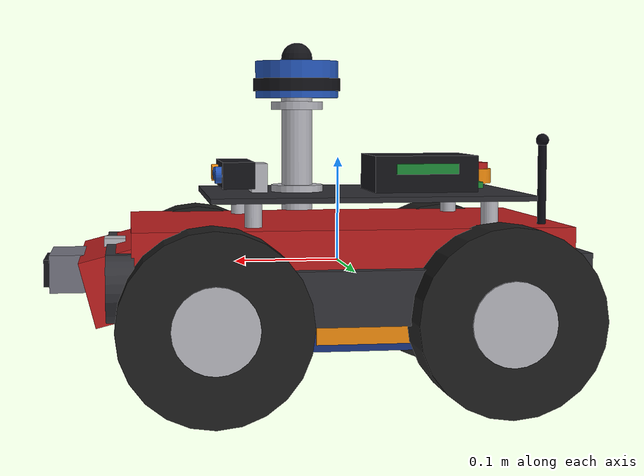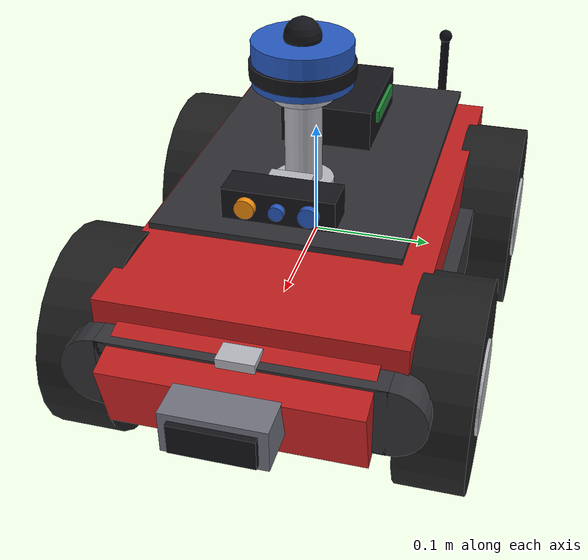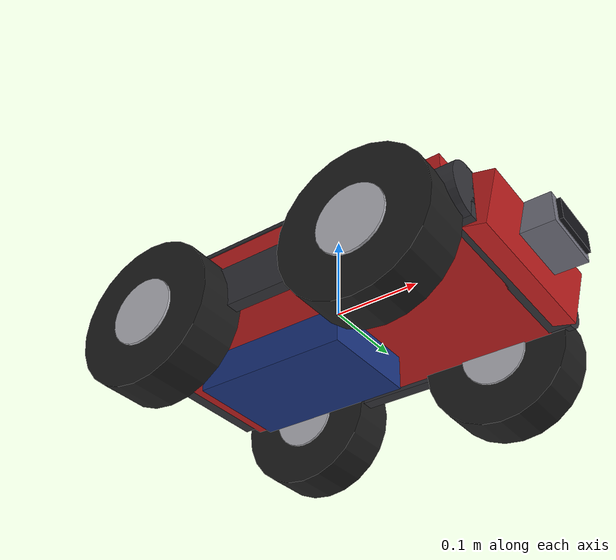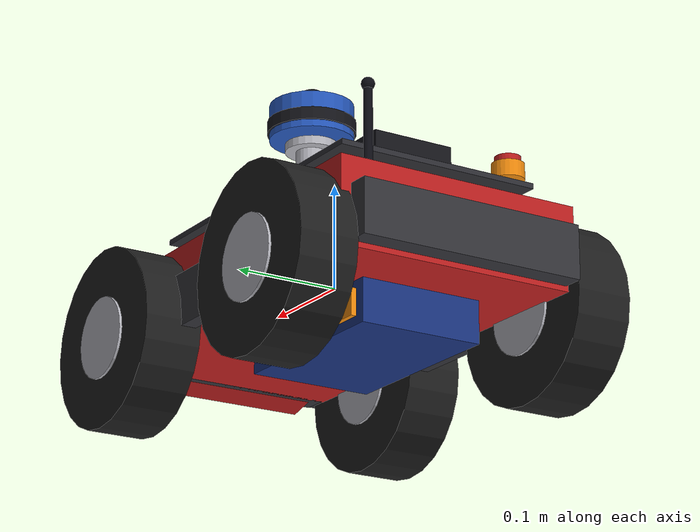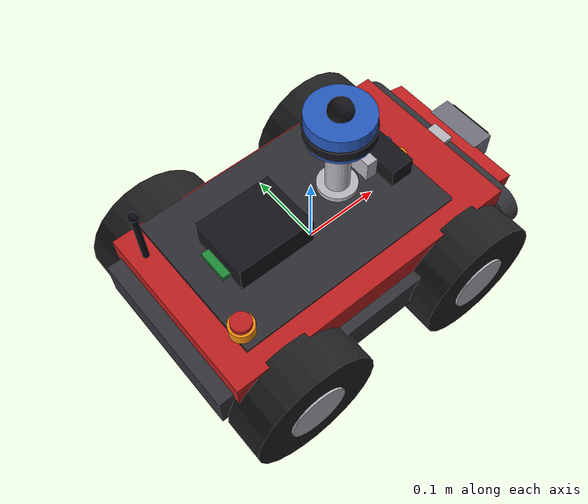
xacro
<?xml version="1.0"?>
<robot name="autonomous_mobile_robot" xmlns:xacro="http://ros.org/wiki/xacro">

  <!-- XACRO PROPERTIES (tune geometry in one place)                     -->
  <xacro:property name="chassis_length"  value="0.40"/>
  <xacro:property name="chassis_width"   value="0.24"/>
  <xacro:property name="chassis_height"  value="0.08"/>
  <xacro:property name="chassis_mass"    value="2.0"/>

  <xacro:property name="upper_deck_length" value="0.30"/>
  <xacro:property name="upper_deck_width"  value="0.20"/>
  <xacro:property name="upper_deck_height" value="0.005"/>
  <xacro:property name="upper_deck_mass"   value="0.3"/>

  <xacro:property name="wheel_radius"    value="0.085"/>
  <xacro:property name="wheel_width"     value="0.055"/>
  <xacro:property name="wheel_mass"      value="0.30"/>
  <xacro:property name="wheel_sep"       value="0.28"/>   <!-- center-to-center Y — tighter for agility -->
  <xacro:property name="wheelbase"       value="0.26"/>   <!-- front-to-rear X — tighter turning radius -->

  <!-- XACRO MACROS                                                      -->

  <!-- Box inertia macro -->
  <xacro:macro name="box_inertia" params="m x y z">
    <inertial>
      <mass value="${m}"/>
      <inertia ixx="${m/12.0*(y*y+z*z)}" ixy="0" ixz="0"
               iyy="${m/12.0*(x*x+z*z)}" iyz="0"
               izz="${m/12.0*(x*x+y*y)}"/>
    </inertial>
  </xacro:macro>

  <!-- Cylinder inertia macro (oriented along Z before joint rotation) -->
  <xacro:macro name="cylinder_inertia" params="m r h">
    <inertial>
      <mass value="${m}"/>
      <inertia ixx="${m/12.0*(3*r*r+h*h)}" ixy="0" ixz="0"
               iyy="${m/12.0*(3*r*r+h*h)}" iyz="0"
               izz="${0.5*m*r*r}"/>
    </inertial>
  </xacro:macro>

  <!-- Wheel macro (creates link + joint + Gazebo friction) -->
  <xacro:macro name="mecanum_wheel" params="name x_pos y_pos fdir1_y">
    <link name="${name}">
      <!-- Tire -->
      <visual>
        <geometry><cylinder radius="${wheel_radius}" length="${wheel_width}"/></geometry>
        <origin xyz="0 0 0" rpy="${pi/2} 0 0"/>
        <material name="dark_rubber"/>
      </visual>
      <!-- Hub cap -->
      <visual>
        <geometry><cylinder radius="${wheel_radius*0.45}" length="${wheel_width+0.005}"/></geometry>
        <origin xyz="0 0 0" rpy="${pi/2} 0 0"/>
        <material name="silver"/>
      </visual>
      <collision>
        <geometry><cylinder radius="${wheel_radius}" length="${wheel_width}"/></geometry>
        <origin xyz="0 0 0" rpy="${pi/2} 0 0"/>
      </collision>
      <xacro:cylinder_inertia m="${wheel_mass}" r="${wheel_radius}" h="${wheel_width}"/>
    </link>

    <joint name="${name}_joint" type="continuous">
      <parent link="base_link"/>
      <child link="${name}"/>
      <origin xyz="${x_pos} ${y_pos} -0.04" rpy="0 0 0"/>
      <axis xyz="0 1 0"/>
      <limit effort="25.0" velocity="15.0"/>
      <dynamics damping="0.03" friction="0.005"/>
    </joint>

    <!-- Mecanum anisotropic friction -->
    <gazebo reference="${name}">
      <surface>
        <friction>
          <ode>
            <mu>1.2</mu>
            <mu2>0.1</mu2>
            <fdir1>1 ${fdir1_y} 0</fdir1>
          </ode>
        </friction>
        <contact>
          <ode>
            <soft_cfm>0</soft_cfm>
            <soft_erp>0.2</soft_erp>
            <kp>1000000</kp>
            <kd>100</kd>
            <max_vel>0.1</max_vel>
            <min_depth>0.002</min_depth>
          </ode>
        </contact>
      </surface>
    </gazebo>
  </xacro:macro>

  <!-- MATERIALS                                                         -->
  <material name="chassis_red">
    <color rgba="0.75 0.12 0.12 1"/>
  </material>
  <material name="deck_dark">
    <color rgba="0.18 0.18 0.20 1"/>
  </material>
  <material name="dark_rubber">
    <color rgba="0.12 0.12 0.12 1"/>
  </material>
  <material name="silver">
    <color rgba="0.72 0.72 0.75 1"/>
  </material>
  <material name="sensor_blue">
    <color rgba="0.15 0.35 0.75 1"/>
  </material>
  <material name="sensor_black">
    <color rgba="0.08 0.08 0.10 1"/>
  </material>
  <material name="pcb_green">
    <color rgba="0.12 0.55 0.22 1"/>
  </material>
  <material name="radar_gray">
    <color rgba="0.45 0.45 0.50 1"/>
  </material>
  <material name="bumper_dark">
    <color rgba="0.20 0.20 0.22 1"/>
  </material>
  <material name="battery_blue">
    <color rgba="0.10 0.20 0.50 1"/>
  </material>
  <material name="antenna_black">
    <color rgba="0.05 0.05 0.08 1"/>
  </material>
  <material name="orange_accent">
    <color rgba="0.95 0.55 0.05 1"/>
  </material>

  <!-- BASE LINK (Main chassis body)                                     -->
  <link name="base_link">
    <!-- Main chassis body -->
    <visual>
      <geometry><box size="${chassis_length} ${chassis_width} ${chassis_height}"/></geometry>
      <origin xyz="0 0 0" rpy="0 0 0"/>
      <material name="chassis_red"/>
    </visual>
    <!-- Chamfered front nose (angled wedge effect using a smaller box) -->
    <visual>
      <geometry><box size="0.06 0.20 0.06"/></geometry>
      <origin xyz="0.21 0 -0.01" rpy="0 0.25 0"/>
      <material name="chassis_red"/>
    </visual>
    <!-- Side skirt left -->
    <visual>
      <geometry><box size="0.36 0.015 0.05"/></geometry>
      <origin xyz="0 0.125 -0.02" rpy="0 0 0"/>
      <material name="bumper_dark"/>
    </visual>
    <!-- Side skirt right -->
    <visual>
      <geometry><box size="0.36 0.015 0.05"/></geometry>
      <origin xyz="0 -0.125 -0.02" rpy="0 0 0"/>
      <material name="bumper_dark"/>
    </visual>
    <collision>
      <geometry><box size="${chassis_length} ${chassis_width} ${chassis_height}"/></geometry>
    </collision>
    <xacro:box_inertia m="${chassis_mass}" x="${chassis_length}" y="${chassis_width}" z="${chassis_height}"/>
  </link>

  <gazebo reference="base_link">
    <surface>
      <friction><ode><mu>0.1</mu><mu2>0.1</mu2></ode></friction>
    </surface>
  </gazebo>

  <!-- UPPER DECK (Electronics platform)                                 -->
  <link name="upper_deck">
    <!-- Deck plate -->
    <visual>
      <geometry><box size="${upper_deck_length} ${upper_deck_width} ${upper_deck_height}"/></geometry>
      <material name="deck_dark"/>
    </visual>
    <!-- Front-left standoff -->
    <visual>
      <geometry><cylinder radius="0.008" length="0.04"/></geometry>
      <origin xyz="0.11 0.08 -0.02" rpy="0 0 0"/>
      <material name="silver"/>
    </visual>
    <!-- Front-right standoff -->
    <visual>
      <geometry><cylinder radius="0.008" length="0.04"/></geometry>
      <origin xyz="0.11 -0.08 -0.02" rpy="0 0 0"/>
      <material name="silver"/>
    </visual>
    <!-- Rear-left standoff -->
    <visual>
      <geometry><cylinder radius="0.008" length="0.04"/></geometry>
      <origin xyz="-0.11 0.08 -0.02" rpy="0 0 0"/>
      <material name="silver"/>
    </visual>
    <!-- Rear-right standoff -->
    <visual>
      <geometry><cylinder radius="0.008" length="0.04"/></geometry>
      <origin xyz="-0.11 -0.08 -0.02" rpy="0 0 0"/>
      <material name="silver"/>
    </visual>
    <collision>
      <geometry><box size="${upper_deck_length} ${upper_deck_width} ${upper_deck_height}"/></geometry>
    </collision>
    <xacro:box_inertia m="${upper_deck_mass}" x="${upper_deck_length}" y="${upper_deck_width}" z="${upper_deck_height}"/>
  </link>

  <joint name="upper_deck_joint" type="fixed">
    <parent link="base_link"/>
    <child link="upper_deck"/>
    <origin xyz="-0.02 0 0.065" rpy="0 0 0"/>
  </joint>

  <!-- FRONT BUMPER                                                      -->
  <link name="front_bumper">
    <!-- Main bumper bar -->
    <visual>
      <geometry><box size="0.025 0.22 0.06"/></geometry>
      <material name="bumper_dark"/>
    </visual>
    <!-- Left bumper end cap -->
    <visual>
      <geometry><cylinder radius="0.03" length="0.025"/></geometry>
      <origin xyz="0 0.11 0" rpy="0 ${pi/2} 0"/>
      <material name="bumper_dark"/>
    </visual>
    <!-- Right bumper end cap -->
    <visual>
      <geometry><cylinder radius="0.03" length="0.025"/></geometry>
      <origin xyz="0 -0.11 0" rpy="0 ${pi/2} 0"/>
      <material name="bumper_dark"/>
    </visual>
    <collision>
      <geometry><box size="0.025 0.26 0.06"/></geometry>
    </collision>
    <xacro:box_inertia m="0.15" x="0.025" y="0.26" z="0.06"/>
  </link>

  <joint name="front_bumper_joint" type="fixed">
    <parent link="base_link"/>
    <child link="front_bumper"/>
    <origin xyz="0.21 0 -0.01" rpy="0 0 0"/>
  </joint>

  <!-- REAR BUMPER                                                       -->
  <link name="rear_bumper">
    <visual>
      <geometry><box size="0.02 0.22 0.05"/></geometry>
      <material name="bumper_dark"/>
    </visual>
    <collision>
      <geometry><box size="0.02 0.22 0.05"/></geometry>
    </collision>
    <xacro:box_inertia m="0.12" x="0.02" y="0.22" z="0.05"/>
  </link>

  <joint name="rear_bumper_joint" type="fixed">
    <parent link="base_link"/>
    <child link="rear_bumper"/>
    <origin xyz="-0.21 0 -0.01" rpy="0 0 0"/>
  </joint>

  <!-- BATTERY PACK (Underside)                                          -->
  <link name="battery_pack">
    <visual>
      <geometry><box size="0.18 0.12 0.04"/></geometry>
      <material name="battery_blue"/>
    </visual>
    <!-- Battery label accent stripe -->
    <visual>
      <geometry><box size="0.16 0.005 0.025"/></geometry>
      <origin xyz="0 0.063 0" rpy="0 0 0"/>
      <material name="orange_accent"/>
    </visual>
    <collision>
      <geometry><box size="0.18 0.12 0.04"/></geometry>
    </collision>
    <xacro:box_inertia m="0.8" x="0.18" y="0.12" z="0.04"/>
  </link>

  <joint name="battery_joint" type="fixed">
    <parent link="base_link"/>
    <child link="battery_pack"/>
    <origin xyz="-0.05 0 -0.06" rpy="0 0 0"/>
  </joint>

  <!-- ELECTRONICS BOX (On-board computer, visible on upper deck)        -->
  <link name="electronics_box">
    <visual>
      <geometry><box size="0.10 0.08 0.035"/></geometry>
      <material name="sensor_black"/>
    </visual>
    <!-- Status LED strip -->
    <visual>
      <geometry><box size="0.06 0.003 0.01"/></geometry>
      <origin xyz="0 0.042 0.005" rpy="0 0 0"/>
      <material name="pcb_green"/>
    </visual>
    <collision>
      <geometry><box size="0.10 0.08 0.035"/></geometry>
    </collision>
    <xacro:box_inertia m="0.25" x="0.10" y="0.08" z="0.035"/>
  </link>

  <joint name="electronics_box_joint" type="fixed">
    <parent link="upper_deck"/>
    <child link="electronics_box"/>
    <origin xyz="-0.06 0 0.02" rpy="0 0 0"/>
  </joint>

  <!-- SENSOR TOWER (Raised mast for LiDAR)                             -->
  <link name="sensor_tower">
    <!-- Vertical mast -->
    <visual>
      <geometry><cylinder radius="0.015" length="0.12"/></geometry>
      <material name="silver"/>
    </visual>
    <!-- Mounting flange at base -->
    <visual>
      <geometry><cylinder radius="0.025" length="0.008"/></geometry>
      <origin xyz="0 0 -0.04" rpy="0 0 0"/>
      <material name="silver"/>
    </visual>
    <!-- Mounting flange at top -->
    <visual>
      <geometry><cylinder radius="0.025" length="0.008"/></geometry>
      <origin xyz="0 0 0.04" rpy="0 0 0"/>
      <material name="silver"/>
    </visual>
    <collision>
      <geometry><cylinder radius="0.015" length="0.12"/></geometry>
    </collision>
    <xacro:cylinder_inertia m="0.08" r="0.015" h="0.12"/>
  </link>

  <joint name="sensor_tower_joint" type="fixed">
    <parent link="upper_deck"/>
    <child link="sensor_tower"/>
    <origin xyz="0.06 0 0.045" rpy="0 0 0"/>
  </joint>

  <!-- GPU LIDAR (Top of sensor tower)                                   -->
  <link name="lidar_link">
    <!-- LiDAR housing (puck shape) -->
    <visual>
      <geometry><cylinder radius="0.04" length="0.035"/></geometry>
      <material name="sensor_blue"/>
    </visual>
    <!-- LiDAR lens ring -->
    <visual>
      <geometry><cylinder radius="0.042" length="0.012"/></geometry>
      <origin xyz="0 0 -0.005" rpy="0 0 0"/>
      <material name="sensor_black"/>
    </visual>
    <!-- Top dome -->
    <visual>
      <geometry><sphere radius="0.015"/></geometry>
      <origin xyz="0 0 0.02" rpy="0 0 0"/>
      <material name="sensor_black"/>
    </visual>
    <collision>
      <geometry><cylinder radius="0.042" length="0.035"/></geometry>
    </collision>
    <xacro:cylinder_inertia m="0.15" r="0.04" h="0.035"/>
  </link>

  <joint name="lidar_joint" type="fixed">
    <parent link="sensor_tower"/>
    <child link="lidar_link"/>
    <origin xyz="0 0 0.065" rpy="0 0 0"/>
  </joint>

  <!-- RADAR (Front-mounted, on bumper bracket)                          -->
  <link name="radar_link">
    <!-- Radar housing -->
    <visual>
      <geometry><box size="0.05 0.08 0.035"/></geometry>
      <material name="radar_gray"/>
    </visual>
    <!-- Radome face (front emitting surface) -->
    <visual>
      <geometry><box size="0.005 0.065 0.025"/></geometry>
      <origin xyz="0.028 0 0" rpy="0 0 0"/>
      <material name="sensor_black"/>
    </visual>
    <!-- Mounting bracket -->
    <visual>
      <geometry><box size="0.02 0.03 0.05"/></geometry>
      <origin xyz="-0.035 0 0.005" rpy="0 0 0"/>
      <material name="silver"/>
    </visual>
    <collision>
      <geometry><box size="0.05 0.08 0.035"/></geometry>
    </collision>
    <xacro:box_inertia m="0.2" x="0.05" y="0.08" z="0.035"/>
  </link>

  <joint name="radar_joint" type="fixed">
    <parent link="front_bumper"/>
    <child link="radar_link"/>
    <origin xyz="0.04 0 0.005" rpy="0 0 0"/>
  </joint>

  <!-- RGBD CAMERA (Front top-mount with bracket)                        -->
  <link name="camera_link">
    <!-- Camera body -->
    <visual>
      <geometry><box size="0.03 0.09 0.025"/></geometry>
      <material name="sensor_black"/>
    </visual>
    <!-- Left lens -->
    <visual>
      <geometry><cylinder radius="0.008" length="0.006"/></geometry>
      <origin xyz="0.018 0.025 0" rpy="0 ${pi/2} 0"/>
      <material name="sensor_blue"/>
    </visual>
    <!-- Right lens (IR projector) -->
    <visual>
      <geometry><cylinder radius="0.008" length="0.006"/></geometry>
      <origin xyz="0.018 -0.025 0" rpy="0 ${pi/2} 0"/>
      <material name="orange_accent"/>
    </visual>
    <!-- Center lens (RGB) -->
    <visual>
      <geometry><cylinder radius="0.006" length="0.006"/></geometry>
      <origin xyz="0.018 0 0" rpy="0 ${pi/2} 0"/>
      <material name="sensor_blue"/>
    </visual>
    <!-- Camera mount bracket -->
    <visual>
      <geometry><box size="0.015 0.035 0.03"/></geometry>
      <origin xyz="-0.022 0 -0.005" rpy="0 0 0"/>
      <material name="silver"/>
    </visual>
    <collision>
      <geometry><box size="0.03 0.09 0.025"/></geometry>
    </collision>
    <xacro:box_inertia m="0.07" x="0.03" y="0.09" z="0.025"/>
  </link>

  <joint name="camera_joint" type="fixed">
    <parent link="upper_deck"/>
    <child link="camera_link"/>
    <origin xyz="0.12 0 0.02" rpy="0 0 0"/>
  </joint>

  <!-- Camera optical frame (ROS convention: Z forward, X right, Y down) -->
  <link name="camera_optical_link"/>

  <joint name="camera_optical_joint" type="fixed">
    <parent link="camera_link"/>
    <child link="camera_optical_link"/>
    <origin xyz="0 0 0" rpy="${-pi/2} 0 ${-pi/2}"/>
  </joint>

  <!-- IMU (Center of chassis, on upper deck)                            -->
  <link name="imu_link">
    <!-- PCB board -->
    <visual>
      <geometry><box size="0.04 0.04 0.006"/></geometry>
      <material name="pcb_green"/>
    </visual>
    <!-- IMU chip -->
    <visual>
      <geometry><box size="0.015 0.015 0.008"/></geometry>
      <origin xyz="0 0 0.007" rpy="0 0 0"/>
      <material name="sensor_black"/>
    </visual>
    <collision>
      <geometry><box size="0.04 0.04 0.015"/></geometry>
    </collision>
    <xacro:box_inertia m="0.02" x="0.04" y="0.04" z="0.015"/>
  </link>

  <joint name="imu_joint" type="fixed">
    <parent link="upper_deck"/>
    <child link="imu_link"/>
    <origin xyz="-0.10 0 0.008" rpy="0 0 0"/>
  </joint>

  <!-- MAGNETOMETER (On top of IMU PCB)                                  -->
  <link name="magnetometer_link">
    <visual>
      <geometry><box size="0.018 0.018 0.008"/></geometry>
      <material name="sensor_black"/>
    </visual>
    <collision>
      <geometry><box size="0.018 0.018 0.008"/></geometry>
    </collision>
    <xacro:box_inertia m="0.01" x="0.018" y="0.018" z="0.008"/>
  </link>

  <joint name="magnetometer_joint" type="fixed">
    <parent link="imu_link"/>
    <child link="magnetometer_link"/>
    <origin xyz="0 0 0.012" rpy="0 0 0"/>
  </joint>

  <!-- ANTENNA (Wi-Fi / telemetry, rear of upper deck)                   -->
  <link name="antenna_link">
    <!-- Antenna mast -->
    <visual>
      <geometry><cylinder radius="0.004" length="0.10"/></geometry>
      <material name="antenna_black"/>
    </visual>
    <!-- Antenna tip -->
    <visual>
      <geometry><sphere radius="0.006"/></geometry>
      <origin xyz="0 0 0.053" rpy="0 0 0"/>
      <material name="antenna_black"/>
    </visual>
    <!-- Antenna base -->
    <visual>
      <geometry><cylinder radius="0.01" length="0.012"/></geometry>
      <origin xyz="0 0 -0.05" rpy="0 0 0"/>
      <material name="sensor_black"/>
    </visual>
    <xacro:cylinder_inertia m="0.015" r="0.006" h="0.10"/>
  </link>

  <joint name="antenna_joint" type="fixed">
    <parent link="upper_deck"/>
    <child link="antenna_link"/>
    <origin xyz="-0.16 0.08 0.00" rpy="0 0 0"/>
  </joint>

  <!-- E-STOP BUTTON (Rear deck, safety)                                 -->
  <link name="estop_button">
    <visual>
      <geometry><cylinder radius="0.015" length="0.015"/></geometry>
      <material name="orange_accent"/>
    </visual>
    <visual>
      <geometry><cylinder radius="0.012" length="0.008"/></geometry>
      <origin xyz="0 0 0.01" rpy="0 0 0"/>
      <material name="chassis_red"/>
    </visual>
    <collision>
      <geometry><cylinder radius="0.015" length="0.02"/></geometry>
    </collision>
    <xacro:cylinder_inertia m="0.01" r="0.015" h="0.02"/>
  </link>

  <joint name="estop_joint" type="fixed">
    <parent link="upper_deck"/>
    <child link="estop_button"/>
    <origin xyz="-0.14 -0.08 0.012" rpy="0 0 0"/>
  </joint>

  <!-- WHEELS (4WD Mecanum, using macro)                                 -->
  <!-- X-pattern: FL(+45) FR(-45) RL(-45) RR(+45)  →  fdir1 Y component -->
  <xacro:mecanum_wheel name="front_left_wheel"  x_pos="0.13"  y_pos="0.14"  fdir1_y="1"/>
  <xacro:mecanum_wheel name="front_right_wheel" x_pos="0.13"  y_pos="-0.14" fdir1_y="-1"/>
  <xacro:mecanum_wheel name="rear_left_wheel"   x_pos="-0.13" y_pos="0.14"  fdir1_y="-1"/>
  <xacro:mecanum_wheel name="rear_right_wheel"  x_pos="-0.13" y_pos="-0.14" fdir1_y="1"/>

  <!-- WHEEL FENDERS (Protective arches over each wheel)                 -->
  <xacro:macro name="wheel_fender" params="name x_pos y_pos">
    <link name="${name}_fender">
      <visual>
        <geometry><box size="0.08 0.05 0.015"/></geometry>
        <material name="bumper_dark"/>
      </visual>
      <collision>
        <geometry><box size="0.08 0.05 0.015"/></geometry>
      </collision>
      <xacro:box_inertia m="0.03" x="0.08" y="0.05" z="0.015"/>
    </link>
    <joint name="${name}_fender_joint" type="fixed">
      <parent link="base_link"/>
      <child link="${name}_fender"/>
      <origin xyz="${x_pos} ${y_pos} 0.01" rpy="0 0 0"/>
    </joint>
  </xacro:macro>

  <xacro:wheel_fender name="fl" x_pos="0.13"  y_pos="0.125"/>
  <xacro:wheel_fender name="fr" x_pos="0.13"  y_pos="-0.125"/>
  <xacro:wheel_fender name="rl" x_pos="-0.13" y_pos="0.125"/>
  <xacro:wheel_fender name="rr" x_pos="-0.13" y_pos="-0.125"/>

  <!-- GAZEBO: DRIVE & STATE PUBLISHER PLUGINS                           -->
  <gazebo>
    <!-- 4WD Mecanum Drive -->
    <plugin filename="libignition-gazebo6-mecanum-drive-system.so"
            name="ignition::gazebo::systems::MecanumDrive">
      <front_left_joint>front_left_wheel_joint</front_left_joint>
      <front_right_joint>front_right_wheel_joint</front_right_joint>
      <back_left_joint>rear_left_wheel_joint</back_left_joint>
      <back_right_joint>rear_right_wheel_joint</back_right_joint>

      <wheel_separation>${wheel_sep}</wheel_separation>
      <wheelbase>${wheelbase}</wheelbase>
      <wheel_radius>${wheel_radius}</wheel_radius>

      <odom_publish_frequency>50</odom_publish_frequency>
      <topic>/model/robot/cmd_vel</topic>
      <odom_topic>/model/robot/odom</odom_topic>
      <tf_topic>/model/robot/tf</tf_topic>
      <frame_id>odom</frame_id>
      <child_frame_id>base_link</child_frame_id>

      <publish_odom>true</publish_odom>
      <!-- EKF (robot_localization) owns odom→base_link TF -->
      <publish_odom_tf>false</publish_odom_tf>
    </plugin>

    <!-- Joint State Publisher -->
    <plugin filename="libignition-gazebo6-joint-state-publisher-system.so"
            name="ignition::gazebo::systems::JointStatePublisher">
      <topic>/model/robot/joint_states</topic>
      <joint_name>front_left_wheel_joint</joint_name>
      <joint_name>front_right_wheel_joint</joint_name>
      <joint_name>rear_left_wheel_joint</joint_name>
      <joint_name>rear_right_wheel_joint</joint_name>
    </plugin>
  </gazebo>

  <!-- GAZEBO: SENSOR DEFINITIONS                                        -->

  <!-- GPU LIDAR: 360°, single-plane, 20 Hz, 18 m range -->
  <gazebo reference="lidar_link">
    <sensor type="gpu_lidar" name="gpu_lidar">
      <pose>0 0 0 0 0 0</pose>
      <visualize>true</visualize>
      <always_on>1</always_on>
      <update_rate>20</update_rate>
      <topic>scan</topic>
      <gz_frame_id>lidar_link</gz_frame_id>
      <lidar>
        <scan>
          <horizontal>
            <samples>360</samples>
            <min_angle>-3.14159</min_angle>
            <max_angle>3.14159</max_angle>
          </horizontal>
          <vertical>
            <samples>1</samples>
            <min_angle>0.0</min_angle>
            <max_angle>0.0</max_angle>
          </vertical>
        </scan>
        <range>
          <min>0.08</min>
          <max>18.0</max>
          <resolution>0.01</resolution>
        </range>
        <noise>
          <type>gaussian</type>
          <mean>0.0</mean>
          <stddev>0.02</stddev>
        </noise>
      </lidar>
    </sensor>
  </gazebo>

  <!-- RADAR (gpu_lidar proxy): forward 90° FOV, 20 m, 15 Hz -->
  <gazebo reference="radar_link">
    <sensor type="gpu_lidar" name="radar_sensor">
      <pose>0 0 0 0 0 0</pose>
      <visualize>false</visualize>
      <always_on>1</always_on>
      <update_rate>15</update_rate>
      <topic>radar</topic>
      <gz_frame_id>radar_link</gz_frame_id>
      <lidar>
        <scan>
          <horizontal>
            <samples>180</samples>
            <min_angle>-0.7854</min_angle>
            <max_angle>0.7854</max_angle>
          </horizontal>
          <vertical>
            <samples>1</samples>
            <min_angle>0.0</min_angle>
            <max_angle>0.0</max_angle>
          </vertical>
        </scan>
        <range>
          <min>0.5</min>
          <max>20.0</max>
          <resolution>0.05</resolution>
        </range>
        <noise>
          <type>gaussian</type>
          <mean>0.0</mean>
          <stddev>0.03</stddev>
        </noise>
      </lidar>
    </sensor>
  </gazebo>

  <!-- FRONT BUMPER CONTACT SENSOR: 50 Hz, publishes /bumper_front -->
  <gazebo reference="front_bumper">
    <sensor name="front_bumper_sensor" type="contact">
      <always_on>1</always_on>
      <update_rate>50</update_rate>
      <contact>
        <collision>front_bumper_collision</collision>
      </contact>
      <topic>/bumper_front</topic>
    </sensor>
  </gazebo>

  <!-- RGBD CAMERA: 640×480, 80° HFOV, 10 Hz -->
  <gazebo reference="camera_link">
    <sensor type="rgbd_camera" name="rgbd_camera">
      <always_on>1</always_on>
      <update_rate>10</update_rate>
      <visualize>true</visualize>
      <topic>rgbd</topic>
      <gz_frame_id>camera_optical_link</gz_frame_id>
      <camera>
        <horizontal_fov>1.396</horizontal_fov>
        <image>
          <width>640</width>
          <height>480</height>
          <format>R8G8B8</format>
        </image>
        <clip>
          <near>0.3</near>
          <far>6.0</far>
        </clip>
        <noise>
          <type>gaussian</type>
          <mean>0.0</mean>
          <stddev>0.01</stddev>
        </noise>
      </camera>
    </sensor>
  </gazebo>

  <!-- IMU: 100 Hz with realistic noise -->
  <gazebo reference="imu_link">
    <sensor name="imu_sensor" type="imu">
      <always_on>1</always_on>
      <update_rate>100</update_rate>
      <visualize>false</visualize>
      <topic>imu</topic>
      <gz_frame_id>imu_link</gz_frame_id>
      <imu>
        <angular_velocity>
          <x><noise type="gaussian"><mean>0.0</mean><stddev>2e-4</stddev></noise></x>
          <y><noise type="gaussian"><mean>0.0</mean><stddev>2e-4</stddev></noise></y>
          <z><noise type="gaussian"><mean>0.0</mean><stddev>2e-4</stddev></noise></z>
        </angular_velocity>
        <linear_acceleration>
          <x><noise type="gaussian"><mean>0.0</mean><stddev>1.7e-2</stddev></noise></x>
          <y><noise type="gaussian"><mean>0.0</mean><stddev>1.7e-2</stddev></noise></y>
          <z><noise type="gaussian"><mean>0.0</mean><stddev>1.7e-2</stddev></noise></z>
        </linear_acceleration>
      </imu>
    </sensor>
  </gazebo>

  <!-- MAGNETOMETER: 50 Hz -->
  <gazebo reference="magnetometer_link">
    <sensor name="magnetometer_sensor" type="magnetometer">
      <always_on>1</always_on>
      <update_rate>50</update_rate>
      <visualize>false</visualize>
      <topic>magnetometer</topic>
      <gz_frame_id>magnetometer_link</gz_frame_id>
      <magnetometer>
        <x><noise type="gaussian"><mean>0.0</mean><stddev>0.01</stddev></noise></x>
        <y><noise type="gaussian"><mean>0.0</mean><stddev>0.01</stddev></noise></y>
        <z><noise type="gaussian"><mean>0.0</mean><stddev>0.01</stddev></noise></z>
      </magnetometer>
    </sensor>
  </gazebo>

</robot>
